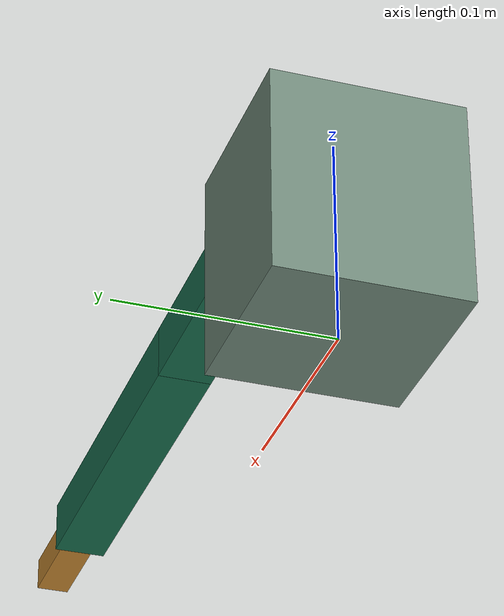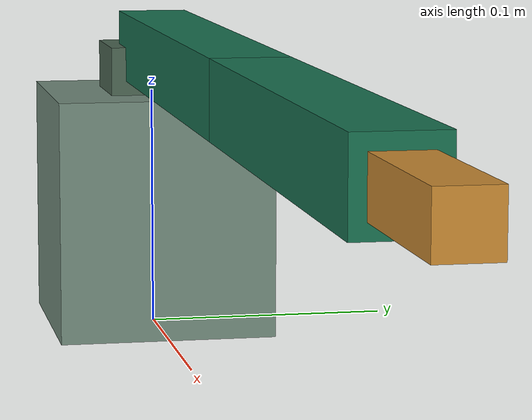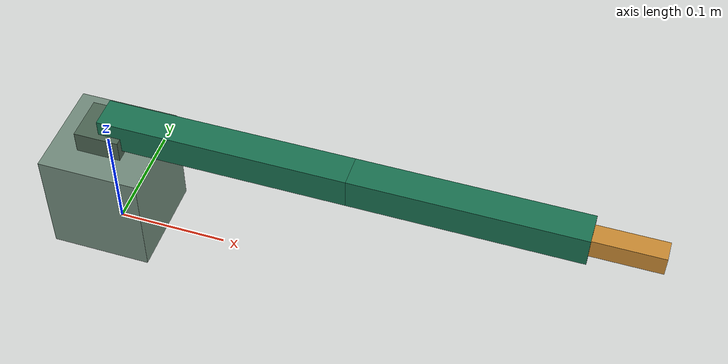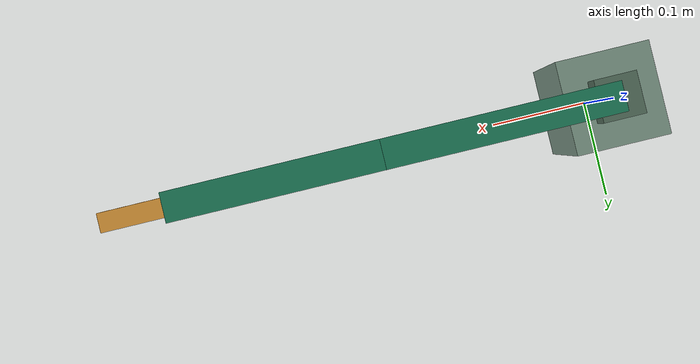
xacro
<?xml version="1.0"?>
<robot xmlns:xacro="http://www.ros.org/wiki/xacro" name="davinci_arm">
  <!-- Teaching geometry, not final CAD or measured motor/payload specifications. -->
  <xacro:arg name="dof" default="3"/>
  <xacro:arg name="backend" default="gazebo"/>
  <xacro:arg name="controllers_file" default=""/>
  <xacro:property name="four" value="${int('$(arg dof)') == 4}"/>
  <xacro:property name="sim" value="${'$(arg backend)' == 'gazebo'}"/>
  <xacro:property name="arm_pi" value="3.141592653589793"/>
  <xacro:macro name="box_link" params="name x y z mass cx cy cz color">
    <link name="${name}">
      <inertial>
        <origin xyz="${cx} ${cy} ${cz}"/>
        <mass value="${mass}"/>
        <inertia ixx="${mass*(y*y+z*z)/12}" iyy="${mass*(x*x+z*z)/12}"
                 izz="${mass*(x*x+y*y)/12}" ixy="0" ixz="0" iyz="0"/>
      </inertial>
      <visual>
        <origin xyz="${cx} ${cy} ${cz}"/>
        <geometry><box size="${x} ${y} ${z}"/></geometry>
        <material name="${name}_color"><color rgba="${color}"/></material>
      </visual>
      <collision>
        <origin xyz="${cx} ${cy} ${cz}"/>
        <geometry><box size="${x} ${y} ${z}"/></geometry>
      </collision>
    </link>
  </xacro:macro>
  <link name="world"/>
  <xacro:box_link name="pedestal" x="0.09" y="0.09" z="0.10"
    mass="1.0" cx="0" cy="0" cz="0.05" color="0.45 0.55 0.49 1"/>
  <xacro:box_link name="yaw_link" x="0.04" y="0.04" z="0.02"
    mass="0.08" cx="0" cy="0" cz="-0.01" color="0.3 0.4 0.33 1"/>
  <xacro:box_link name="upper_arm" x="0.22" y="0.028" z="0.028"
    mass="0.25" cx="0.11" cy="0" cz="0" color="0.1 0.45 0.32 1"/>
  <xacro:box_link name="forearm" x="0.20" y="0.028" z="0.028"
    mass="0.20" cx="0.10" cy="0" cz="0" color="0.1 0.45 0.32 1"/>
  <xacro:box_link name="tool" x="0.06" y="0.018" z="0.018"
    mass="0.05" cx="0.03" cy="0" cz="0" color="0.8 0.55 0.2 1"/>
  <!-- This fixed tool establishes a target frame; gripper actuation comes later. -->
  <link name="tool_tip"/>
  <joint name="world_fixed" type="fixed">
    <parent link="world"/><child link="pedestal"/><origin xyz="0 0 0"/>
  </joint>
  <joint name="base_yaw" type="revolute">
    <parent link="pedestal"/><child link="yaw_link"/>
    <origin xyz="0 0 0.12"/><axis xyz="0 0 1"/>
    <limit lower="${-170*arm_pi/180}" upper="${170*arm_pi/180}" effort="10" velocity="1.4"/>
    <dynamics damping="0.1" friction="0.02"/>
  </joint>
  <!-- Pitch axes use -Y so a positive angle raises a +X link. -->
  <joint name="shoulder_pitch" type="revolute">
    <parent link="yaw_link"/><child link="upper_arm"/>
    <origin xyz="0 0 0"/><axis xyz="0 -1 0"/>
    <limit lower="0" upper="${150*arm_pi/180}" effort="10" velocity="1.4"/>
    <dynamics damping="0.1" friction="0.02"/>
  </joint>
  <joint name="elbow_pitch" type="revolute">
    <parent link="upper_arm"/><child link="forearm"/>
    <origin xyz="0.22 0 0"/><axis xyz="0 -1 0"/>
    <limit lower="${-150*arm_pi/180}" upper="0" effort="10" velocity="1.4"/>
    <dynamics damping="0.1" friction="0.02"/>
  </joint>
  <xacro:if value="${four}">
    <joint name="wrist_pitch" type="revolute">
      <parent link="forearm"/><child link="tool"/>
      <origin xyz="0.20 0 0"/><axis xyz="0 -1 0"/>
      <limit lower="${-150*arm_pi/180}" upper="${150*arm_pi/180}" effort="10" velocity="1.4"/>
      <dynamics damping="0.1" friction="0.02"/>
    </joint>
  </xacro:if>
  <xacro:unless value="${four}">
    <joint name="wrist_fixed" type="fixed">
      <parent link="forearm"/><child link="tool"/><origin xyz="0.20 0 0"/>
    </joint>
  </xacro:unless>
  <joint name="tool_tip_fixed" type="fixed">
    <parent link="tool"/><child link="tool_tip"/><origin xyz="0.06 0 0"/>
  </joint>
  <xacro:macro name="controlled_joint" params="name angle">
    <joint name="${name}">
      <command_interface name="position"/>
      <state_interface name="position"><param name="initial_value">${angle}</param></state_interface>
      <state_interface name="velocity"/>
    </joint>
  </xacro:macro>
  <ros2_control name="DaVinciSystem" type="system">
    <hardware>
      <xacro:if value="${sim}"><plugin>gz_ros2_control/GazeboSimSystem</plugin></xacro:if>
      <xacro:unless value="${sim}"><plugin>mock_components/GenericSystem</plugin></xacro:unless>
    </hardware>
    <xacro:controlled_joint name="base_yaw" angle="0"/>
    <xacro:controlled_joint name="shoulder_pitch" angle="${65*arm_pi/180}"/>
    <xacro:controlled_joint name="elbow_pitch" angle="${-95*arm_pi/180}"/>
    <xacro:if value="${four}">
      <xacro:controlled_joint name="wrist_pitch" angle="${-60*arm_pi/180}"/>
    </xacro:if>
  </ros2_control>
  <xacro:if value="${sim}">
    <gazebo>
      <plugin filename="libgz_ros2_control-system.so" name="gz_ros2_control::GazeboSimROS2ControlPlugin">
        <parameters>$(arg controllers_file)</parameters>
        <position_proportional_gain>0.1</position_proportional_gain>
      </plugin>
    </gazebo>
  </xacro:if>
</robot>
